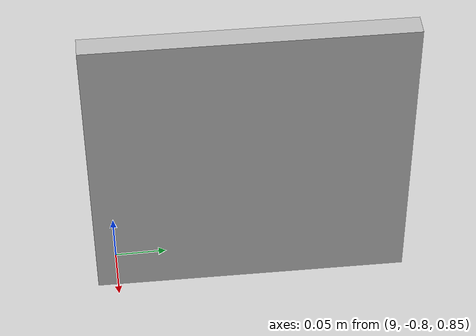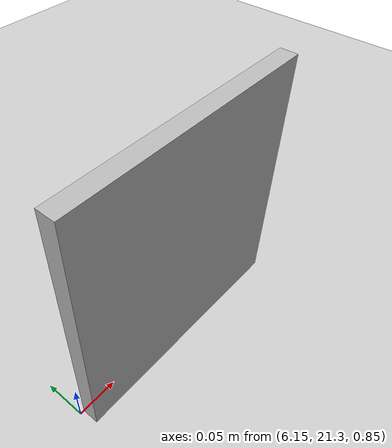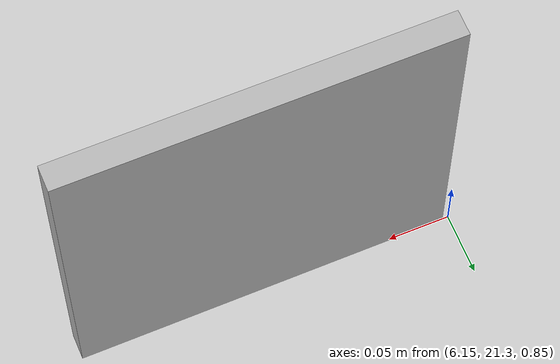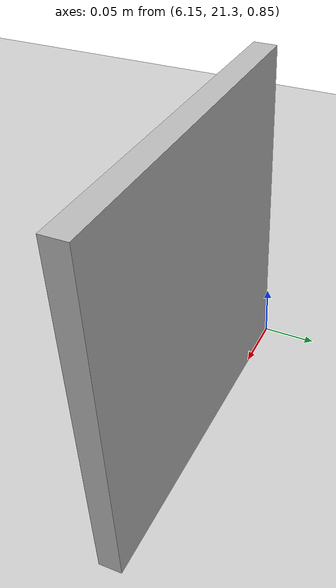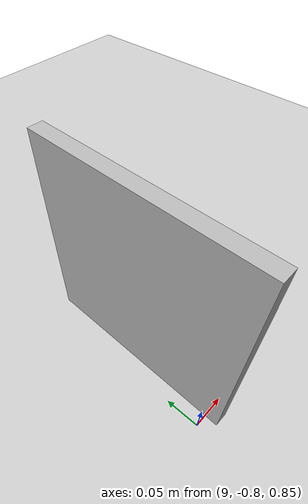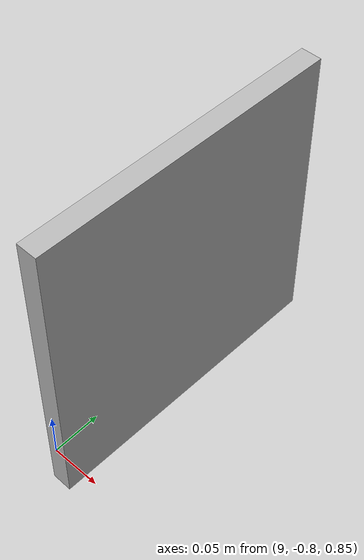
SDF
<sdf version="1.7">
 <world name="roadmap_world">
  <model name="ground_plane">
   <static>1</static>
   <link name="link">
    <collision name="collision">
     <geometry><plane><normal>0 0 1</normal><size>100 100</size></plane></geometry>
    </collision>
    <visual name="visual">
     <geometry><plane><normal>0 0 1</normal><size>100 100</size></plane></geometry>
     <material>
      <script><uri>file://media/materials/scripts/gazebo.material</uri><name>Gazebo/Grey</name></script>
     </material>
    </visual>
   </link>
  </model>
  <light name="sun" type="directional">
   <pose>0 0 10 0 -0 0</pose>
   <diffuse>0.8 0.8 0.8 1</diffuse>
   <specular>0.2 0.2 0.2 1</specular>
   <direction>-0.5 0.1 -0.9</direction>
   <attenuation><range>10</range></attenuation>
   <spot><inner_angle>0</inner_angle><outer_angle>0</outer_angle><falloff>0</falloff></spot>
  </light>
  <gravity>0 0 -9.8</gravity>
  <physics type="ode">
   <max_step_size>0.001</max_step_size>
   <real_time_factor>1</real_time_factor>
   <real_time_update_rate>1000</real_time_update_rate>
  </physics>
  <scene><ambient>0.5 0.5 0.5 1</ambient><background>0.7 0.7 0.7 1</background><shadows>1</shadows></scene>
  <magnetic_field>6e-06 2.3e-05 -4.2e-05</magnetic_field>
  <atmosphere type="adiabatic"/>
  <audio><device>default</device></audio>
  <spherical_coordinates>
   <surface_model>EARTH_WGS84</surface_model>
   <latitude_deg>0</latitude_deg>
   <longitude_deg>0</longitude_deg>
   <elevation>0</elevation>
   <heading_deg>0</heading_deg>
  </spherical_coordinates>
  <model name="left_sign">
   <static>1</static>
   <link name="sign">
    <pose>0 0 1 0 -0 0</pose>
    <collision name="collision"><geometry><box><size>0.3 0.02 0.3</size></box></geometry></collision>
    <visual name="visual">
     <geometry><box><size>0.3 0.02 0.3</size></box></geometry>
     <material>
      <script>
       <uri>model://left_sign/materials/scripts</uri>
       <uri>model://left_sign/materials/textures</uri>
       <name>LeftSign/Material</name>
      </script>
     </material>
    </visual>
   </link>
   <pose>9.03068 -0.66902 0 0 -0 1.55</pose>
  </model>
  <model name="right_sign">
   <static>1</static>
   <link name="sign">
    <pose>0 0 1 0 -0 0</pose>
    <collision name="collision"><geometry><box><size>0.3 0.02 0.3</size></box></geometry></collision>
    <visual name="visual">
     <geometry><box><size>0.3 0.02 0.3</size></box></geometry>
     <material>
      <script>
       <uri>model://right_sign/materials/scripts</uri>
       <uri>model://right_sign/materials/textures</uri>
       <name>RightSign/Material</name>
      </script>
     </material>
    </visual>
   </link>
   <pose>6.30508 21.2906 0 0 -0 0</pose>
  </model>
 </world>
</sdf>
